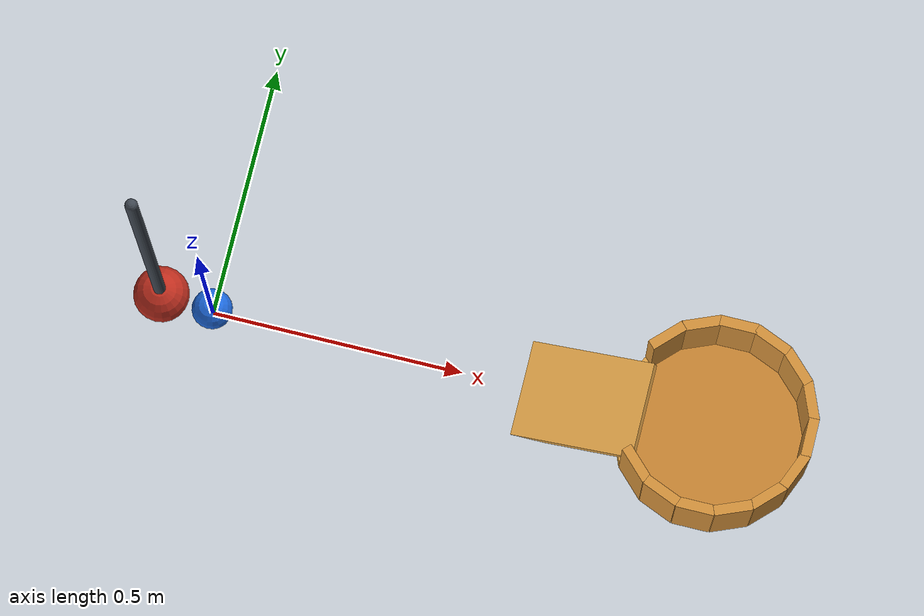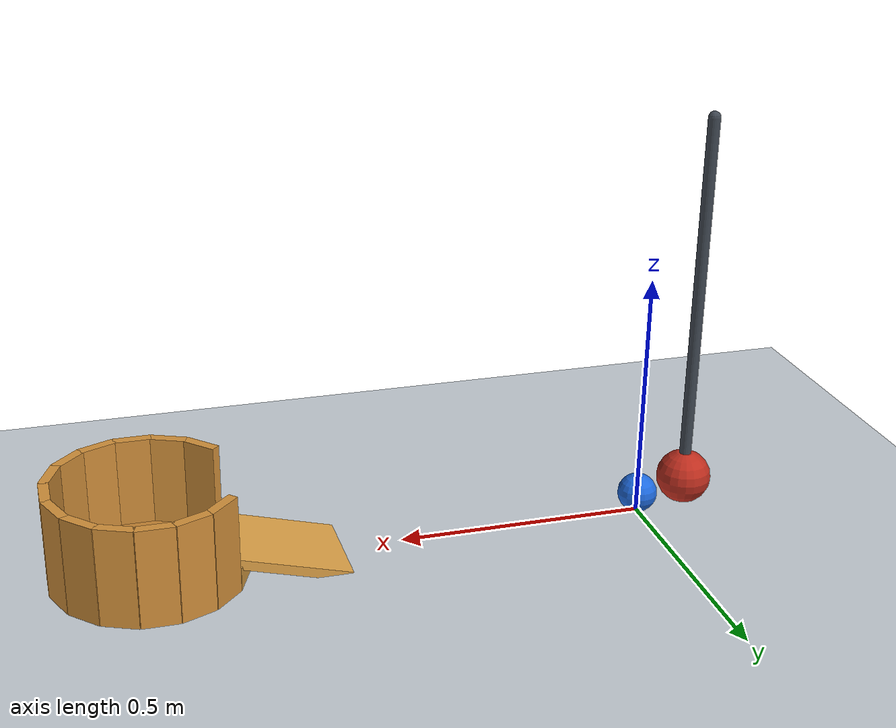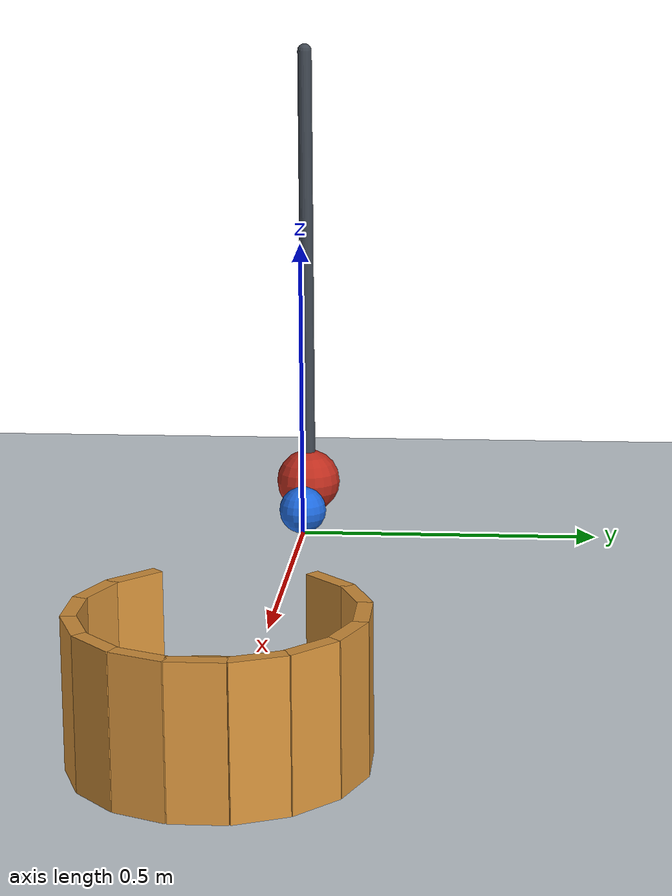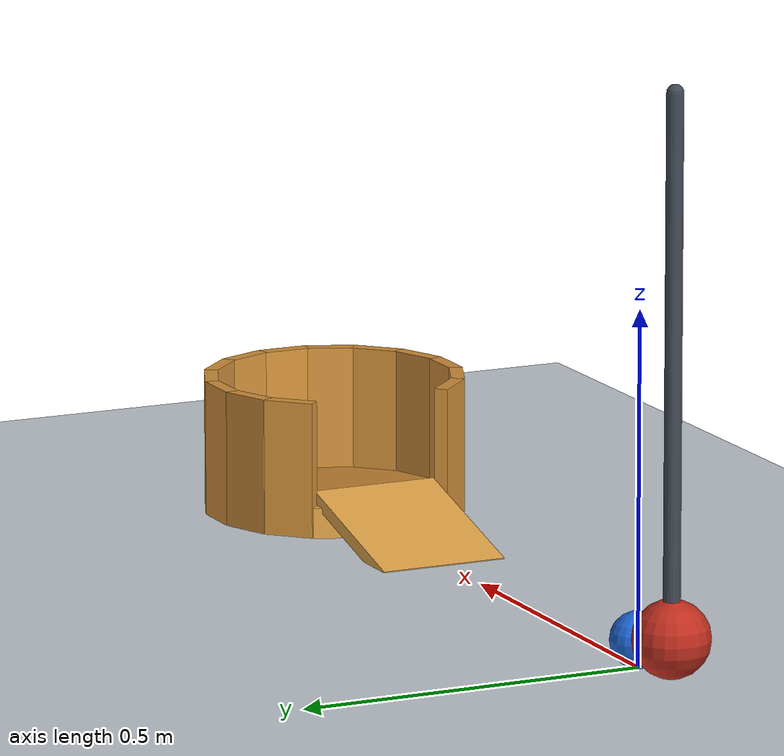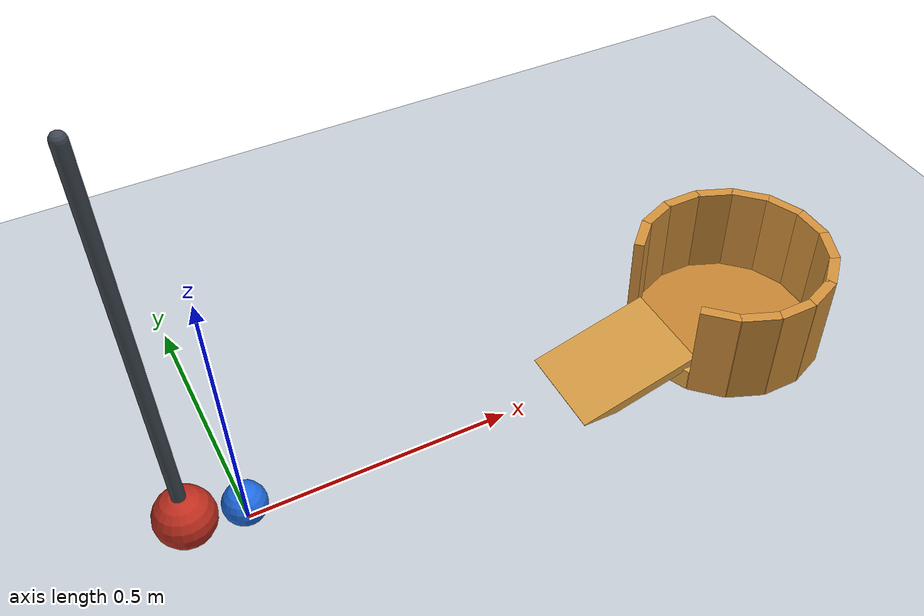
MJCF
<mujoco model="pendulum_ball_cup">
  <compiler angle="radian" autolimits="true"/>
  <option timestep="0.002" gravity="0 0 -9.81" integrator="implicitfast" cone="elliptic" iterations="80"/>
  <size nconmax="200" njmax="1000"/>

  <visual>
    <headlight ambient="0.4 0.4 0.4" diffuse="0.7 0.7 0.7"/>
    <global azimuth="125" elevation="-25"/>
  </visual>

  <worldbody>
    <light name="overhead" pos="0.4 -1.5 3" dir="0 0 -1"/>
    <camera name="overview" pos="0.5 -3 1.65" xyaxes="1 0 0 0 0.45 0.893"/>

    <geom name="floor" type="plane" size="3 2 0.1" rgba="0.78 0.81 0.84 1" friction="0.35 0.005 0.0001" condim="6" solref="0.008 1" solimp="0.95 0.99 0.001"/>

    <!-- Gravity releases the raised pendulum; its bob strikes toward +x. -->
    <body name="pendulum" pos="-0.1 0 0.815">
      <joint name="pendulum_hinge" type="hinge" axis="0 1 0" damping="0.012"/>
      <geom name="pendulum_rod" type="capsule" fromto="0 0 0 0 0 -0.75" size="0.012" mass="0.05" rgba="0.25 0.28 0.32 1" friction="0.2 0.001 0.0001" solref="0.008 1"/>
      <geom name="pendulum_bob" type="sphere" pos="0 0 -0.75" size="0.055" mass="0.4" rgba="0.75 0.18 0.12 1" friction="0.2 0.001 0.0001" condim="6" solref="0.008 1" solimp="0.95 0.99 0.001"/>
    </body>

    <body name="ball" pos="0 0 0.04">
      <freejoint name="ball_free"/>
      <geom name="ball" type="sphere" size="0.04" mass="0.06" rgba="0.12 0.42 0.88 1" friction="0.35 0.005 0.0001" condim="6" solref="0.008 1" solimp="0.95 0.99 0.001"/>
    </body>

    <body name="cup" pos="1 0 0">
      <geom name="cup_bottom" type="cylinder" pos="0 0 0.009" size="0.19 0.009" rgba="0.78 0.52 0.20 1" friction="0.8 0.02 0.004" condim="6" solref="0.008 1" solimp="0.95 0.99 0.001"/>

      <geom name="cup_ramp" type="box" pos="-0.257386 0 0.022848" euler="0 -0.26449 0" size="0.124323 0.095 0.01" rgba="0.88 0.64 0.28 1" friction="0.65 0.005 0.0002" condim="6" solref="0.008 1" solimp="0.95 0.99 0.001"/>

      <geom name="cup_wall_00" type="box" pos="0.18 0 0.10" euler="0 0 0" size="0.01 0.037 0.10" rgba="0.83 0.57 0.23 1" friction="0.8 0.02 0.004" condim="6" solref="0.008 1"/>
      <geom name="cup_wall_01" type="box" pos="0.166298 0.068883 0.10" euler="0 0 0.392699" size="0.01 0.037 0.10" rgba="0.83 0.57 0.23 1" friction="0.8 0.02 0.004" condim="6" solref="0.008 1"/>
      <geom name="cup_wall_02" type="box" pos="0.127279 0.127279 0.10" euler="0 0 0.785398" size="0.01 0.037 0.10" rgba="0.83 0.57 0.23 1" friction="0.8 0.02 0.004" condim="6" solref="0.008 1"/>
      <geom name="cup_wall_03" type="box" pos="0.068883 0.166298 0.10" euler="0 0 1.178097" size="0.01 0.037 0.10" rgba="0.83 0.57 0.23 1" friction="0.8 0.02 0.004" condim="6" solref="0.008 1"/>
      <geom name="cup_wall_04" type="box" pos="0 0.18 0.10" euler="0 0 1.570796" size="0.01 0.037 0.10" rgba="0.83 0.57 0.23 1" friction="0.8 0.02 0.004" condim="6" solref="0.008 1"/>
      <geom name="cup_wall_05" type="box" pos="-0.068883 0.166298 0.10" euler="0 0 1.963495" size="0.01 0.037 0.10" rgba="0.83 0.57 0.23 1" friction="0.8 0.02 0.004" condim="6" solref="0.008 1"/>
      <geom name="cup_wall_06" type="box" pos="-0.127279 0.127279 0.10" euler="0 0 2.356194" size="0.01 0.037 0.10" rgba="0.83 0.57 0.23 1" friction="0.8 0.02 0.004" condim="6" solref="0.008 1"/>

      <geom name="cup_lip_07" type="box" pos="-0.166298 0.068883 0.0225" euler="0 0 2.748894" size="0.01 0.037 0.0225" rgba="0.88 0.64 0.28 1" friction="0.8 0.02 0.004" condim="6" solref="0.008 1"/>
      <geom name="cup_lip_08" type="box" pos="-0.18 0 0.0225" euler="0 0 3.141593" size="0.01 0.037 0.0225" rgba="0.88 0.64 0.28 1" friction="0.8 0.02 0.004" condim="6" solref="0.008 1"/>
      <geom name="cup_lip_09" type="box" pos="-0.166298 -0.068883 0.0225" euler="0 0 3.534292" size="0.01 0.037 0.0225" rgba="0.88 0.64 0.28 1" friction="0.8 0.02 0.004" condim="6" solref="0.008 1"/>

      <geom name="cup_wall_10" type="box" pos="-0.127279 -0.127279 0.10" euler="0 0 3.926991" size="0.01 0.037 0.10" rgba="0.83 0.57 0.23 1" friction="0.8 0.02 0.004" condim="6" solref="0.008 1"/>
      <geom name="cup_wall_11" type="box" pos="-0.068883 -0.166298 0.10" euler="0 0 4.319690" size="0.01 0.037 0.10" rgba="0.83 0.57 0.23 1" friction="0.8 0.02 0.004" condim="6" solref="0.008 1"/>
      <geom name="cup_wall_12" type="box" pos="0 -0.18 0.10" euler="0 0 4.712389" size="0.01 0.037 0.10" rgba="0.83 0.57 0.23 1" friction="0.8 0.02 0.004" condim="6" solref="0.008 1"/>
      <geom name="cup_wall_13" type="box" pos="0.068883 -0.166298 0.10" euler="0 0 5.105088" size="0.01 0.037 0.10" rgba="0.83 0.57 0.23 1" friction="0.8 0.02 0.004" condim="6" solref="0.008 1"/>
      <geom name="cup_wall_14" type="box" pos="0.127279 -0.127279 0.10" euler="0 0 5.497787" size="0.01 0.037 0.10" rgba="0.83 0.57 0.23 1" friction="0.8 0.02 0.004" condim="6" solref="0.008 1"/>
      <geom name="cup_wall_15" type="box" pos="0.166298 -0.068883 0.10" euler="0 0 5.890486" size="0.01 0.037 0.10" rgba="0.83 0.57 0.23 1" friction="0.8 0.02 0.004" condim="6" solref="0.008 1"/>
    </body>
  </worldbody>

  <keyframe>
    <key name="start" qpos="0.9 0 0 0.04 1 0 0 0" qvel="0 0 0 0 0 0 0"/>
  </keyframe>
</mujoco>
